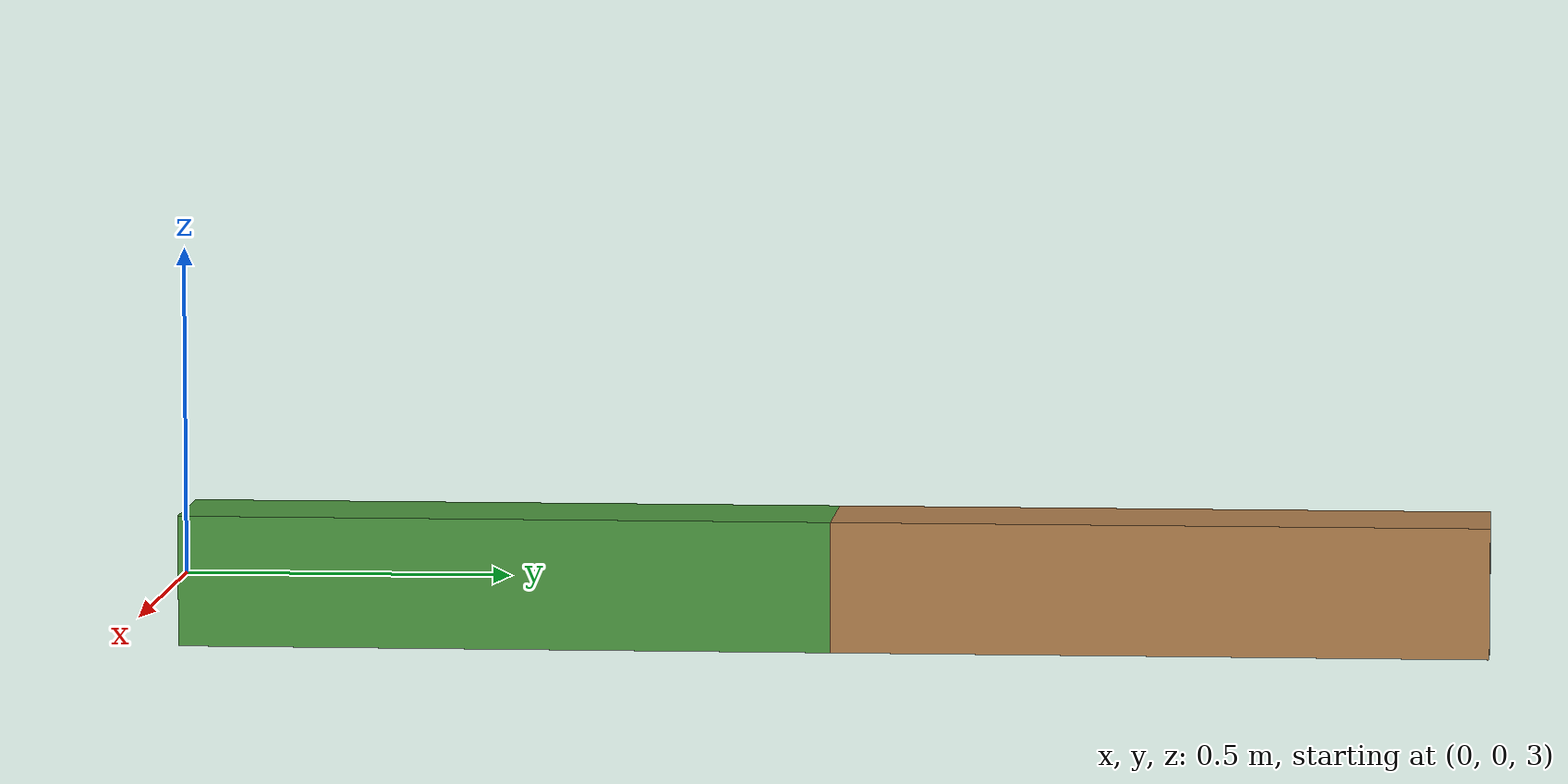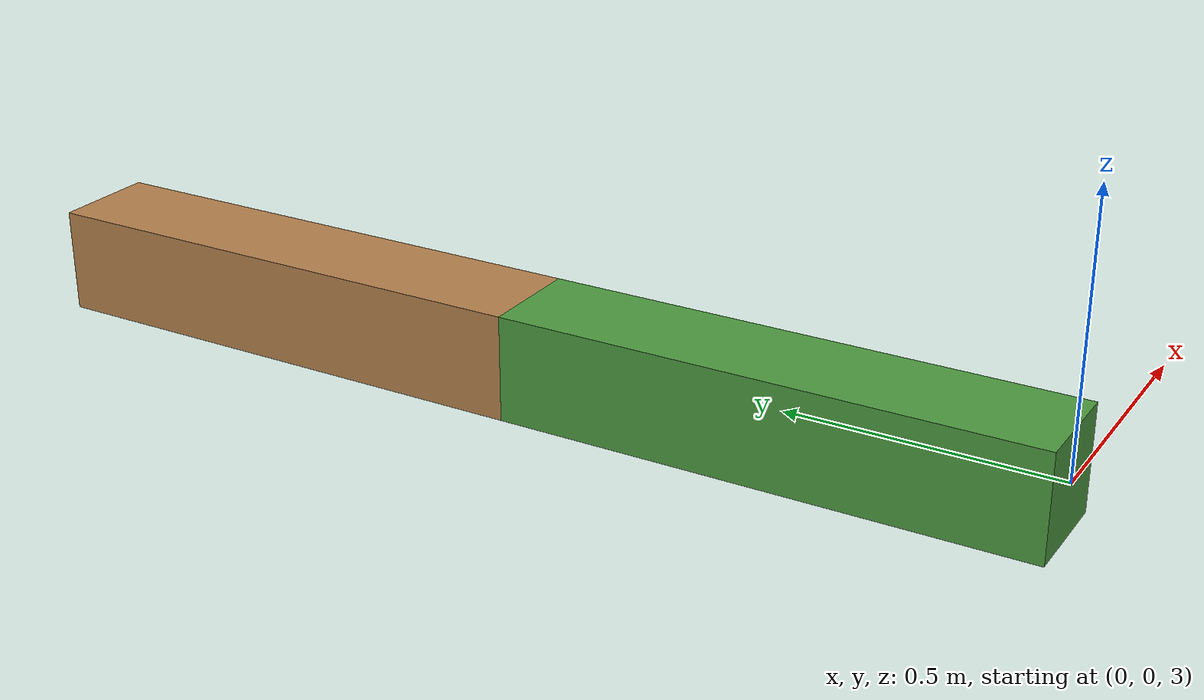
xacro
<?xml version="1.0"?>
<robot name="continuous_pendulum"
       xmlns:xi="http://www.w3.org/2001/XInclude"
       xmlns:gazebo="http://playerstage.sourceforge.net/gazebo/xmlschema/#gz"
       xmlns:model="http://playerstage.sourceforge.net/gazebo/xmlschema/#model"
       xmlns:sensor="http://playerstage.sourceforge.net/gazebo/xmlschema/#sensor"
       xmlns:body="http://playerstage.sourceforge.net/gazebo/xmlschema/#body"
       xmlns:geom="http://playerstage.sourceforge.net/gazebo/xmlschema/#geom"
       xmlns:joint="http://playerstage.sourceforge.net/gazebo/xmlschema/#joint"
       xmlns:interface="http://playerstage.sourceforge.net/gazebo/xmlschema/#interface"
       xmlns:rendering="http://playerstage.sourceforge.net/gazebo/xmlschema/#rendering"
       xmlns:renderable="http://playerstage.sourceforge.net/gazebo/xmlschema/#renderable"
       xmlns:controller="http://playerstage.sourceforge.net/gazebo/xmlschema/#controller"
       xmlns:physics="http://playerstage.sourceforge.net/gazebo/xmlschema/#physics">

  <!--
     A pendulum constructed from single continuous link and a mass with some moment of inertia
  -->
  <link name="world"/>
  <joint name="link1_joint" type="continuous" >
    <axis xyz="1 0 0" />
    <parent link="world" />
    <origin xyz="0 0 3" rpy="0 0 0" />
    <child link="link1" />
    <dynamics damping="0.0" />
  </joint>
  <link name="link1">
    <inertial >
      <mass value="1.0" />
      <origin xyz="0 1 0" />
      <inertia  ixx="0.0" ixy="0.0"  ixz="0.0"  iyy="0.0"  iyz="0.0"  izz="0.0" />
    </inertial>
    <visual >
      <origin xyz="0 0.5 0" rpy="0 0 0" />
      <geometry>
        <box size="0.2 1.0 0.2" />
      </geometry>
    </visual>
    <collision >
      <origin xyz="0 0.5 0" rpy="0 0 0" />
      <geometry>
        <box size="0.2 1.0 0.2" />
      </geometry>
    </collision>
  </link>
  <gazebo reference="link1">
    <material>Gazebo/GrassFloor</material>
    <turnGravityOff>false</turnGravityOff>
  </gazebo>

  <joint name="link2_joint" type="continuous" >
    <axis xyz="1 0 0" />
    <parent link="link1" />
    <origin xyz="0 1 0" rpy="0 0 0" />
    <child link="link2" />
    <dynamics damping="0.0" />
  </joint>
  <link name="link2">
    <inertial >
      <mass value="1.0" />
      <origin xyz="0 1 0" />
      <inertia  ixx="0.0" ixy="0.0"  ixz="0.0"  iyy="0.0"  iyz="0.0"  izz="0.0" />
    </inertial>
    <visual >
      <origin xyz="0 0.5 0" rpy="0 0 0" />
      <geometry>
        <box size="0.2 1.0 0.2" />
      </geometry>
    </visual>
    <collision >
      <origin xyz="0 0.5 0" rpy="0 0 0" />
      <geometry>
        <box size="0.2 1.0 0.2" />
      </geometry>
    </collision>
  </link>
  <gazebo reference="link2">
    <material>Gazebo/LightWood</material>
    <turnGravityOff>false</turnGravityOff>
  </gazebo>
  <gazebo>
      <!-- PR2_ACTARRAY -->
      <controller:gazebo_ros_controller_manager name="gazebo_ros_controller_manager" plugin="libgazebo_ros_controller_manager.so">
        <alwaysOn>true</alwaysOn>
        <updateRate>1000.0</updateRate>
        <interface:audio name="gazebo_ros_controller_manager_dummy_iface" />
      </controller:gazebo_ros_controller_manager>

      <!-- gazebo_ros_p3d for position groundtruth -->
      <controller:gazebo_ros_p3d name="p3d_link1_controller" plugin="libgazebo_ros_p3d.so">
          <alwaysOn>true</alwaysOn>
          <updateRate>100.0</updateRate>
          <bodyName>link1</bodyName>
          <topicName>link1_pose</topicName>
          <frameName>map</frameName>
          <interface:position name="p3d_link1_position"/>
      </controller:gazebo_ros_p3d>
      <controller:gazebo_ros_p3d name="p3d_link2_controller" plugin="libgazebo_ros_p3d.so">
          <alwaysOn>true</alwaysOn>
          <updateRate>100.0</updateRate>
          <bodyName>link2</bodyName>
          <topicName>link2_pose</topicName>
          <frameName>map</frameName>
          <interface:position name="p3d_link2_position"/>
      </controller:gazebo_ros_p3d>
  </gazebo>

  <!-- mechanism controls -->
  <transmission type="SimpleTransmission" name="link1_trans">
    <actuator name="link1_motor" />
    <joint name="link1_joint" />
    <mechanicalReduction>1</mechanicalReduction>
    <motorTorqueConstant>1</motorTorqueConstant>
  </transmission>

  <transmission type="SimpleTransmission" name="link2_trans">
    <actuator name="link2_motor" />
    <joint name="link2_joint" />
    <mechanicalReduction>1</mechanicalReduction>
    <motorTorqueConstant>1</motorTorqueConstant>
  </transmission>

</robot>
